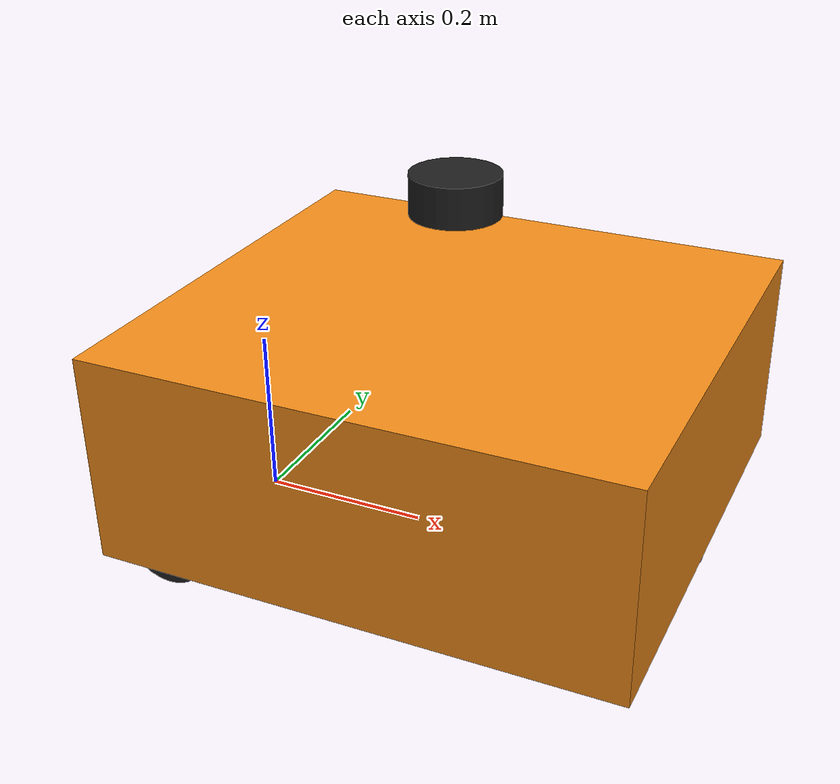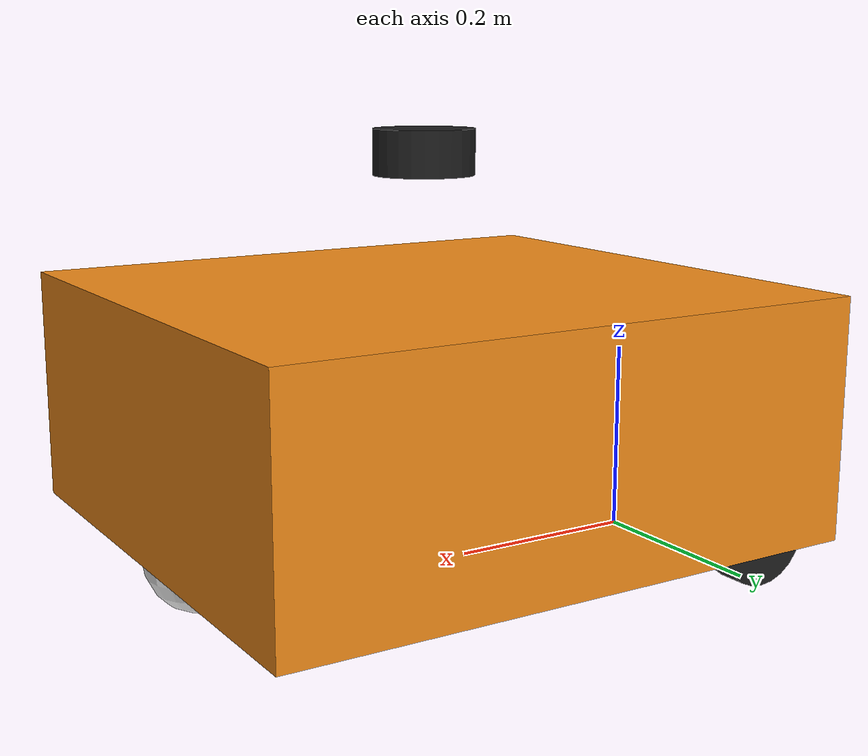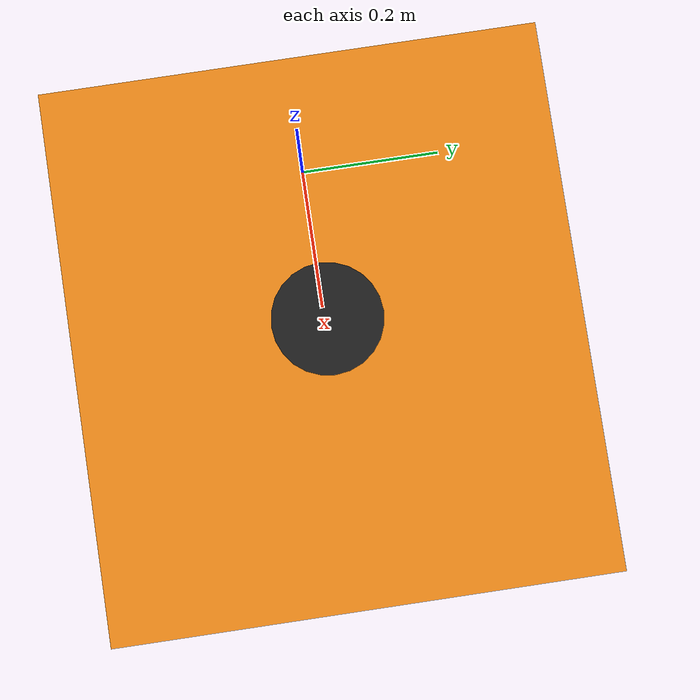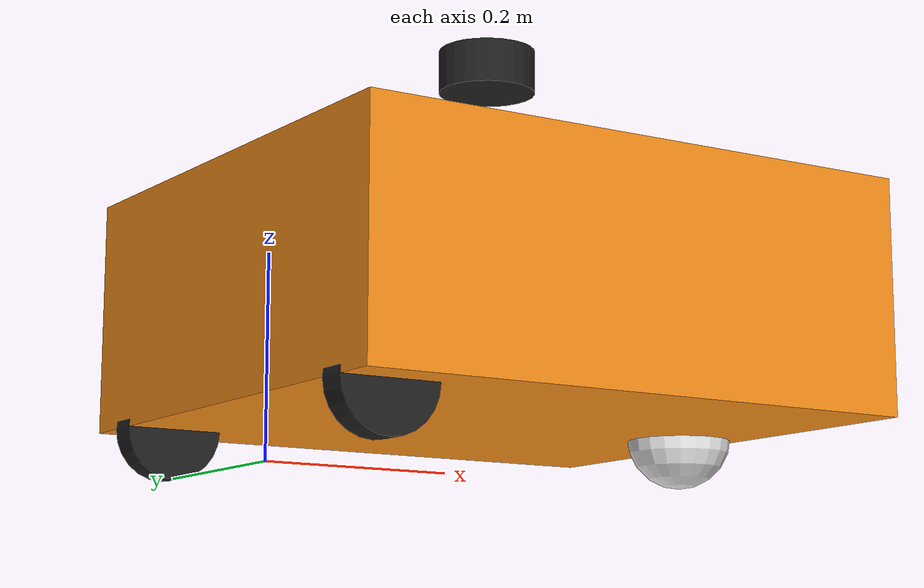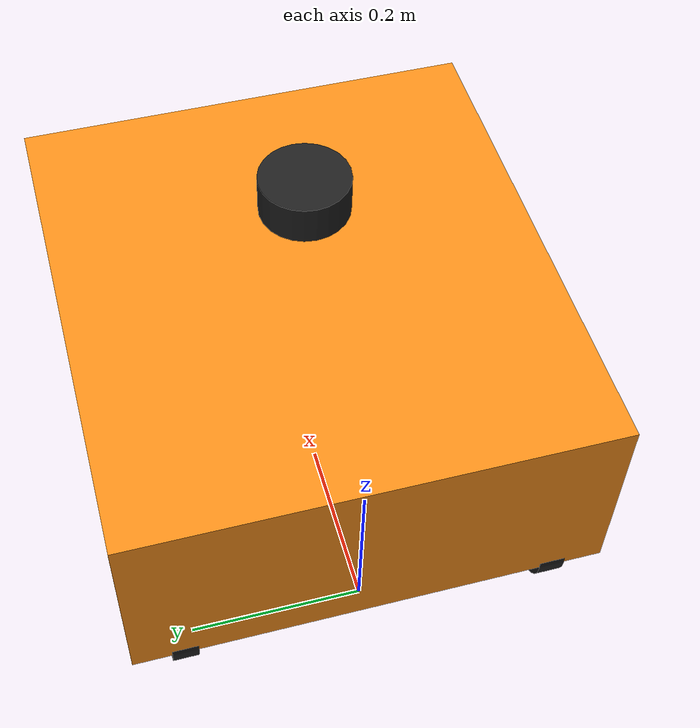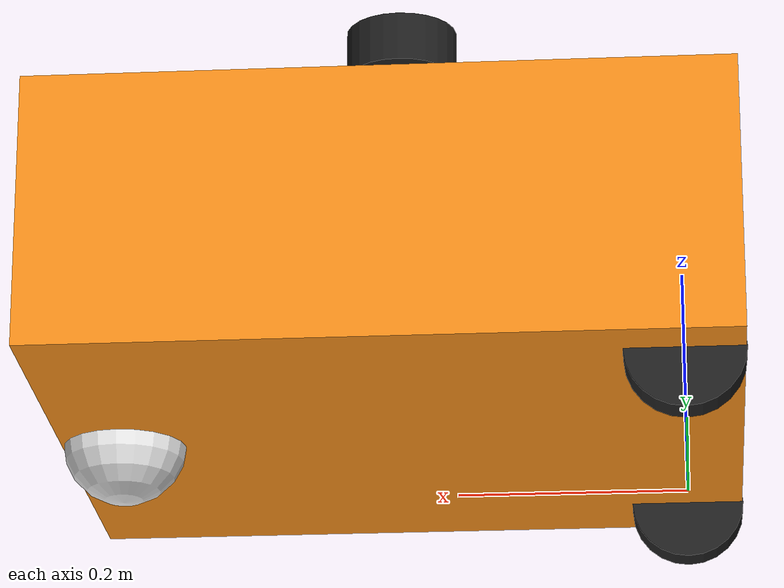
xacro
<?xml version="1.0"?>
<robot name="my_robot" xmlns:xacro="http://www.ros.org/wiki/xacro">

  <xacro:include filename="$(find my_robot_description)/urdf/my_robot.materials.xacro" />
  <xacro:include filename="$(find my_robot_description)/urdf/my_robot.ros2_control.xacro" />

  <xacro:property name="PI" value="3.1415926535897931"/>

  <!-- Gövde ölçüleri -->
  <xacro:property name="base_width" value="0.55" />
  <xacro:property name="base_length" value="0.60" />
  <xacro:property name="base_height" value="0.24" />

  <!-- Tekerlek ölçüleri -->
  <xacro:property name="wheel_separation" value="0.43" />
  <xacro:property name="wheel_len" value="0.030" />
  <xacro:property name="wheel_radius" value="0.051" />
  <xacro:property name="caster_wheel_radius" value="0.055" />

  <!-- Aks: arkadan 5cm -->
  <xacro:property name="axle_offset" value="0.05" />

  <!-- LiDAR: akstan 25cm önde, yerden 42cm (akstan 36.9cm) -->
  <xacro:property name="laser_radius" value="0.05"/>
  <xacro:property name="laser_length" value="0.045"/>
  <xacro:property name="laser_x" value="0.25"/>
  <xacro:property name="laser_z" value="0.369"/>

  <!-- Root frame -->
  <link name="base_footprint" />

  <!-- Gövde -->
  <link name="base_link">
    <collision>
      <origin xyz="${base_length/2 - axle_offset} 0 ${base_height/2}" rpy="0 0 0"/>
      <geometry>
        <box size="${base_length} ${base_width} ${base_height}"/>
      </geometry>
    </collision>
    <visual>
      <origin xyz="${base_length/2 - axle_offset} 0 ${base_height/2}" rpy="0 0 0"/>
      <geometry>
        <box size="${base_length} ${base_width} ${base_height}"/>
      </geometry>
      <material name="orange"/>
    </visual>
    <inertial>
      <mass value="5.0"/>
      <origin xyz="${base_length/2 - axle_offset} 0 ${base_height/2}"/>
      <inertia ixx="0.10" ixy="0" ixz="0" iyy="0.10" iyz="0" izz="0.10"/>
    </inertial>
  </link>

  <joint name="base_joint" type="fixed">
    <parent link="base_footprint"/>
    <child link="base_link"/>
    <origin xyz="0 0 ${wheel_radius}" rpy="0 0 0"/>
  </joint>

  <!-- LiDAR -->
  <joint name="base_link_to_laser" type="fixed">
    <parent link="base_link"/>
    <child link="laser_link"/>
    <origin xyz="${laser_x} 0 ${laser_z}" rpy="0 0 ${PI}"/>
  </joint>

  <link name="laser_link">
    <visual>
      <origin xyz="0 0 0" rpy="0 0 0"/>
      <geometry>
        <cylinder radius="${laser_radius}" length="${laser_length}"/>
      </geometry>
      <material name="black"/>
    </visual>
    <collision>
      <origin xyz="0 0 0" rpy="0 0 0"/>
      <geometry>
        <cylinder radius="${laser_radius}" length="${laser_length}"/>
      </geometry>
    </collision>
    <inertial>
      <mass value="0.1"/>
      <origin xyz="0 0 0"/>
      <inertia ixx="0.001" ixy="0" ixz="0" iyy="0.001" iyz="0" izz="0.001"/>
    </inertial>
  </link>

  <!-- Sol Teker -->
  <joint name="left_wheel_joint" type="continuous">
    <parent link="base_link"/>
    <child link="left_wheel"/>
    <origin xyz="0 ${wheel_separation/2} 0" rpy="0 0 0"/>
    <axis xyz="0 1 0"/>
    <dynamics damping="0.2"/>
  </joint>

  <link name="left_wheel">
    <collision>
      <origin xyz="0 0 0" rpy="${PI/2} 0 0"/>
      <geometry><cylinder length="${wheel_len}" radius="${wheel_radius}"/></geometry>
    </collision>
    <visual>
      <origin xyz="0 0 0" rpy="${PI/2} 0 0"/>
      <geometry><cylinder length="${wheel_len}" radius="${wheel_radius}"/></geometry>
      <material name="black"/>
    </visual>
    <inertial>
      <mass value="1.0"/><origin xyz="0 0 0"/>
      <inertia ixx="0.01" ixy="0" ixz="0" iyy="0.01" iyz="0" izz="0.01"/>
    </inertial>
  </link>

  <!-- Sağ Teker -->
  <joint name="right_wheel_joint" type="continuous">
    <parent link="base_link"/>
    <child link="right_wheel"/>
    <origin xyz="0 -${wheel_separation/2} 0" rpy="0 0 0"/>
    <axis xyz="0 1 0"/>
    <dynamics damping="0.2"/>
  </joint>

  <link name="right_wheel">
    <collision>
      <origin xyz="0 0 0" rpy="${PI/2} 0 0"/>
      <geometry><cylinder length="${wheel_len}" radius="${wheel_radius}"/></geometry>
    </collision>
    <visual>
      <origin xyz="0 0 0" rpy="${PI/2} 0 0"/>
      <geometry><cylinder length="${wheel_len}" radius="${wheel_radius}"/></geometry>
      <material name="black"/>
    </visual>
    <inertial>
      <mass value="1.0"/><origin xyz="0 0 0"/>
      <inertia ixx="0.01" ixy="0" ixz="0" iyy="0.01" iyz="0" izz="0.01"/>
    </inertial>
  </link>

  <!-- Ön Caster -->
  <joint name="caster_frontal_wheel_joint" type="fixed">
    <parent link="base_link"/>
    <child link="caster_frontal_wheel"/>
    <origin xyz="${base_length - axle_offset - caster_wheel_radius} 0 ${-wheel_radius + caster_wheel_radius}" rpy="0 0 0"/>
  </joint>

  <link name="caster_frontal_wheel">
    <collision>
      <origin xyz="0 0 0" rpy="0 0 0"/>
      <geometry><sphere radius="${caster_wheel_radius}"/></geometry>
    </collision>
    <visual>
      <origin xyz="0 0 0" rpy="0 0 0"/>
      <geometry><sphere radius="${caster_wheel_radius}"/></geometry>
      <material name="white"/>
    </visual>
    <inertial>
      <mass value="0.3"/><origin xyz="0 0 0"/>
      <inertia ixx="0.001" ixy="0" ixz="0" iyy="0.001" iyz="0" izz="0.001"/>
    </inertial>
  </link>

  <xacro:my_robot_ros2_control name="my_robot" prefix="" />

</robot>
